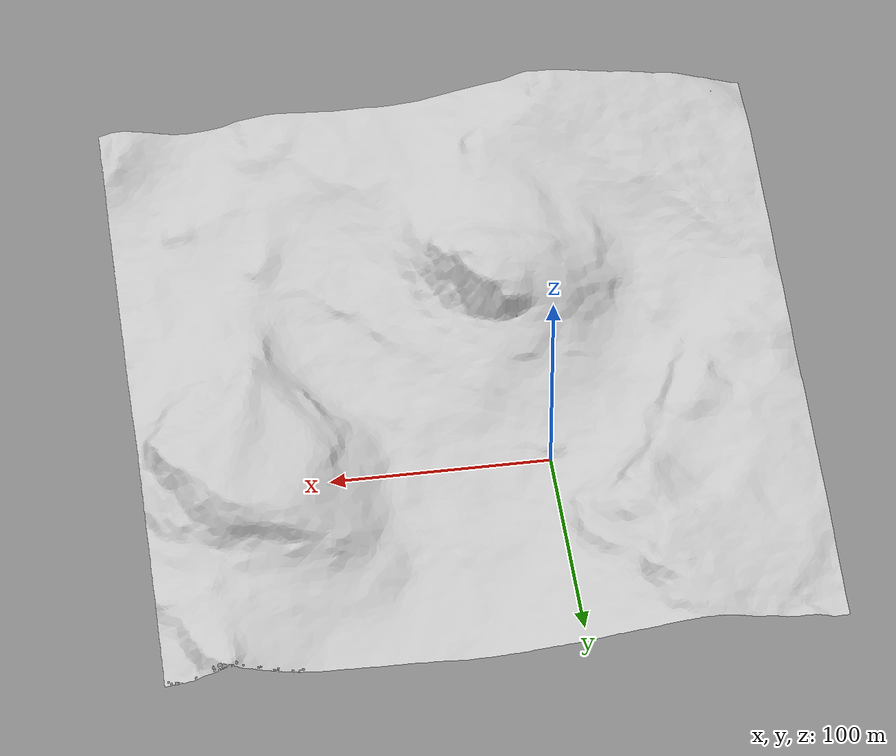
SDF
<sdf version="1.5">
    <world name="default">

        <!-- Martian Gravity-->
        <gravity>0 0 -3.711</gravity>

        <model name="world_mars_terrain" />
        <include>
            <uri>model://terrain_export_mountain</uri>
            <name>terrain_export_mountain</name>
            <pose>0 0 0 0 0 0</pose>
        </include>

        <scene>
            <!-- I was walking along, minding my business, when out of an -->
            <ambient>0.8 0.76470588235 0.60392156862 1</ambient>
            <background>0.8 0.76470588235 0.60392156862 1</background>
            <!-- Flash! Bam! Alakazam! -->
            <grid>false</grid>
            <origin_visual>false</origin_visual>
        </scene>

        <light name='light0' type='directional'>
            <pose>0 0 0 0 0 0</pose>
            <diffuse>0.5 0.5 0.5 1</diffuse>
            <specular>0.1 0.1 0.1 1</specular>
            <direction>0.1 0.1 -0.9</direction>
            <attenuation>
                <range>20</range>
                <constant>0.5</constant>
                <linear>0.01</linear>
                <quadratic>0.001</quadratic>
            </attenuation>
            <cast_shadows>1</cast_shadows>
        </light>
        <light name='light2' type='directional'>
            <pose>0 0 0 0 0 0</pose>
            <diffuse>0.5 0.5 0.5 1</diffuse>
            <specular>0.1 0.1 0.1 1</specular>
            <direction>0.1 0.1 -0.9</direction>
            <attenuation>
                <range>20</range>
                <constant>0.5</constant>
                <linear>0.01</linear>
                <quadratic>0.001</quadratic>
            </attenuation>
            <cast_shadows>0</cast_shadows>
        </light>
        <light name='light3' type='directional'>
            <pose>0 0 0 0 0 0</pose>
            <diffuse>0.5 0.5 0.5 1</diffuse>
            <specular>0.1 0.1 0.1 1</specular>
            <direction>0.1 0.1 -0.9</direction>
            <attenuation>
                <range>20</range>
                <constant>0.5</constant>
                <linear>0.01</linear>
                <quadratic>0.001</quadratic>
            </attenuation>
            <cast_shadows>0</cast_shadows>
        </light>
        <light name='light4' type='directional'>
            <pose>0 0 0 0 0 0</pose>
            <diffuse>0.5 0.5 0.5 1</diffuse>
            <specular>0.1 0.1 0.1 1</specular>
            <direction>0.1 0.1 -0.9</direction>
            <attenuation>
                <range>20</range>
                <constant>0.5</constant>
                <linear>0.01</linear>
                <quadratic>0.001</quadratic>
            </attenuation>
            <cast_shadows>0</cast_shadows>
        </light>

    </world>
</sdf>

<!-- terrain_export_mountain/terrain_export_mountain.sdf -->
<sdf version='1.4'>
  <model name="terrain_export_mountain">
      <static>1</static>
      <link name='link'>
        <inertial>
          <mass>0.25</mass>
          <inertia>
            <ixx>0.00015</ixx>
            <ixy>0.000000</ixy>
            <ixz>0.000000</ixz>
            <iyy>0.00015</iyy>
            <iyz>0.000000</iyz>
            <izz>0.00015</izz>
          </inertia>
        </inertial>
        <collision name='collision'>
          <geometry>
            <mesh>
              <uri>model://terrain_export_mountain/terrain_export_mountain_lowpoly.dae</uri>
              <scale>1 1 1</scale>
            </mesh>
          </geometry>
          <surface>
            <friction>
              <ode>
                <mu>30.0</mu>
                <mu2>30.0</mu2>
              </ode>
            </friction>
            <contact>
              <ode>
                <kp>1000000.0</kp>
                <kd>100.0</kd>
                <max_vel>1.0</max_vel>
                <min_depth>0.002</min_depth>
              </ode>
            </contact>
          </surface>
        </collision>
        <visual name='visual'>
          <geometry>
            <mesh>
              <uri>model://terrain_export_mountain/terrain_export_mountain.dae</uri>
              <scale>1 1 1</scale>
            </mesh>
          </geometry>
        </visual>
        <velocity_decay>
          <linear>0.000000</linear>
          <angular>0.000000</angular>
        </velocity_decay>
        <self_collide>0</self_collide>
        <kinematic>0</kinematic>
        <gravity>1</gravity>
      </link>
  </model>
</sdf>
